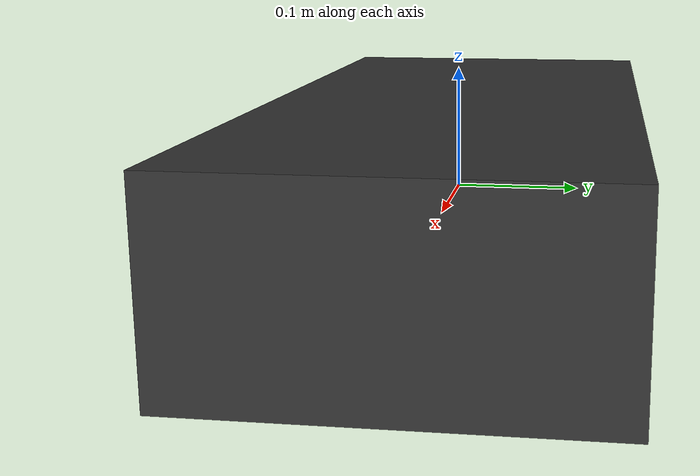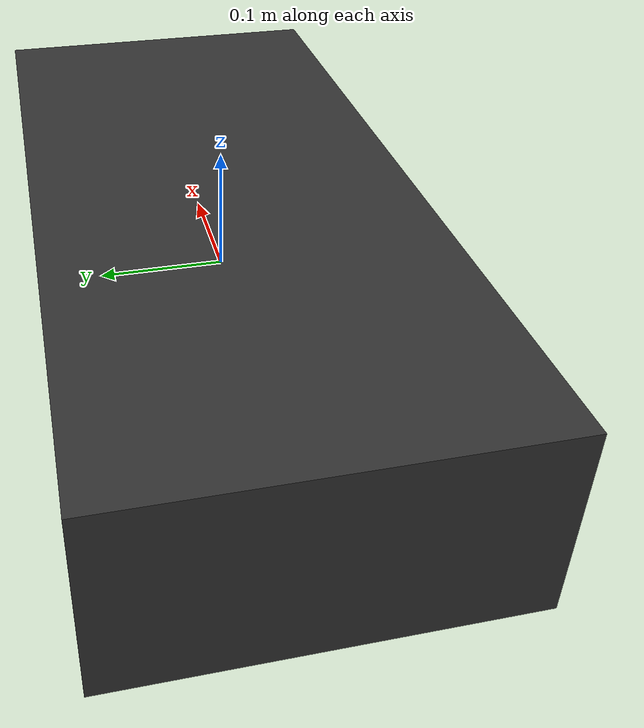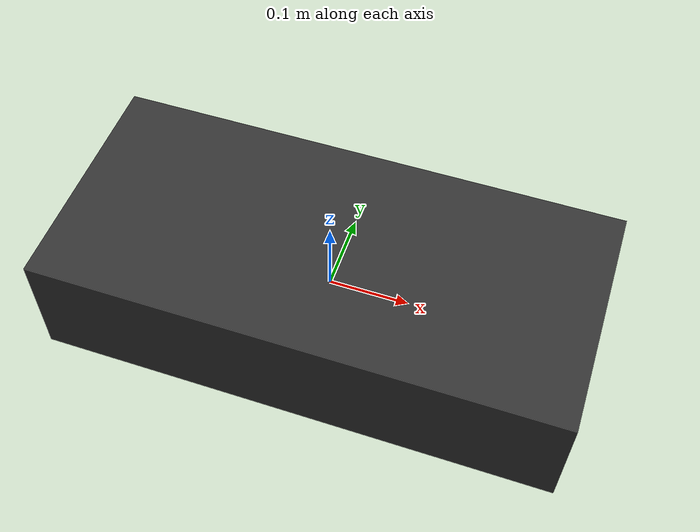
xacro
<?xml version="1.0"?>
<robot xmlns:xacro="http://www.ros.org/wiki/xacro" name="quadruped_robot">

  <xacro:arg name="imu_x" default="0.0"/>
  <xacro:arg name="imu_y" default="0.0"/>
  <xacro:arg name="imu_z" default="0.0"/>
  <xacro:arg name="imu_roll" default="0.0"/>
  <xacro:arg name="imu_pitch" default="0.0"/>
  <xacro:arg name="imu_yaw" default="0.0"/>
  <xacro:arg name="lidar_x" default="0.0"/>
  <xacro:arg name="lidar_y" default="0.0"/>
  <xacro:arg name="lidar_z" default="0.0"/>
  <xacro:arg name="lidar_roll" default="0.0"/>
  <xacro:arg name="lidar_pitch" default="0.0"/>
  <xacro:arg name="lidar_yaw" default="0.0"/>
  <!-- body -> base_link = inverse of the IMU mount; computed by rsp.launch.py from the imu_* args -->
  <xacro:arg name="body_to_base_xyz" default="0 0 0"/>
  <xacro:arg name="body_to_base_rpy" default="0 0 0"/>

  <link name="body"/>
  <joint name="body_to_base_joint" type="fixed">
    <parent link="body"/>
    <child link="base_link"/>
    <origin xyz="$(arg body_to_base_xyz)" rpy="$(arg body_to_base_rpy)"/>
  </joint>

  <!-- Base link (REP-105 body center) -->
  <link name="base_link">
    <visual>
      <origin xyz="0 0 0" rpy="0 0 0"/>
      <geometry>
        <box size="0.65 0.30 0.15"/>
      </geometry>
      <material name="dark_grey">
        <color rgba="0.2 0.2 0.2 1.0"/>
      </material>
    </visual>
  </link>

  <!-- IMU link -->
  <link name="imu_link">
    <visual>
      <origin xyz="0 0 0" rpy="0 0 0"/>
      <geometry>
        <box size="0.03 0.03 0.015"/>
      </geometry>
      <material name="orange">
        <color rgba="1.0 0.5 0.0 1.0"/>
      </material>
    </visual>
  </link>
  <joint name="base_to_imu_joint" type="fixed">
    <parent link="base_link"/>
    <child link="imu_link"/>
    <origin xyz="$(arg imu_x) $(arg imu_y) $(arg imu_z)" rpy="$(arg imu_roll) $(arg imu_pitch) $(arg imu_yaw)"/>
  </joint>

  <!-- RoboSense Airy / Odin1 LiDAR link -->
  <link name="lidar_link">
    <visual>
      <origin xyz="0 0 0" rpy="0 0 0"/>
      <geometry>
        <cylinder radius="0.05" length="0.08"/>
      </geometry>
      <material name="blue">
        <color rgba="0.0 0.3 0.8 1.0"/>
      </material>
    </visual>
  </link>
  <joint name="base_to_lidar_joint" type="fixed">
    <parent link="base_link"/>
    <child link="lidar_link"/>
    <origin xyz="$(arg lidar_x) $(arg lidar_y) $(arg lidar_z)" rpy="$(arg lidar_roll) $(arg lidar_pitch) $(arg lidar_yaw)"/>
  </joint>

  <xacro:arg name="cam_x" default="0.0"/>
  <xacro:arg name="cam_y" default="0.0"/>
  <xacro:arg name="cam_z" default="0.0"/>
  <xacro:arg name="cam_roll" default="-1.5707963"/>
  <xacro:arg name="cam_pitch" default="0.0"/>
  <xacro:arg name="cam_yaw" default="-1.5707963"/>
  <link name="camera_link"/>
  <joint name="base_to_camera_joint" type="fixed">
    <parent link="base_link"/>
    <child link="camera_link"/>
    <origin xyz="$(arg cam_x) $(arg cam_y) $(arg cam_z)" rpy="$(arg cam_roll) $(arg cam_pitch) $(arg cam_yaw)"/>
  </joint>

</robot>
